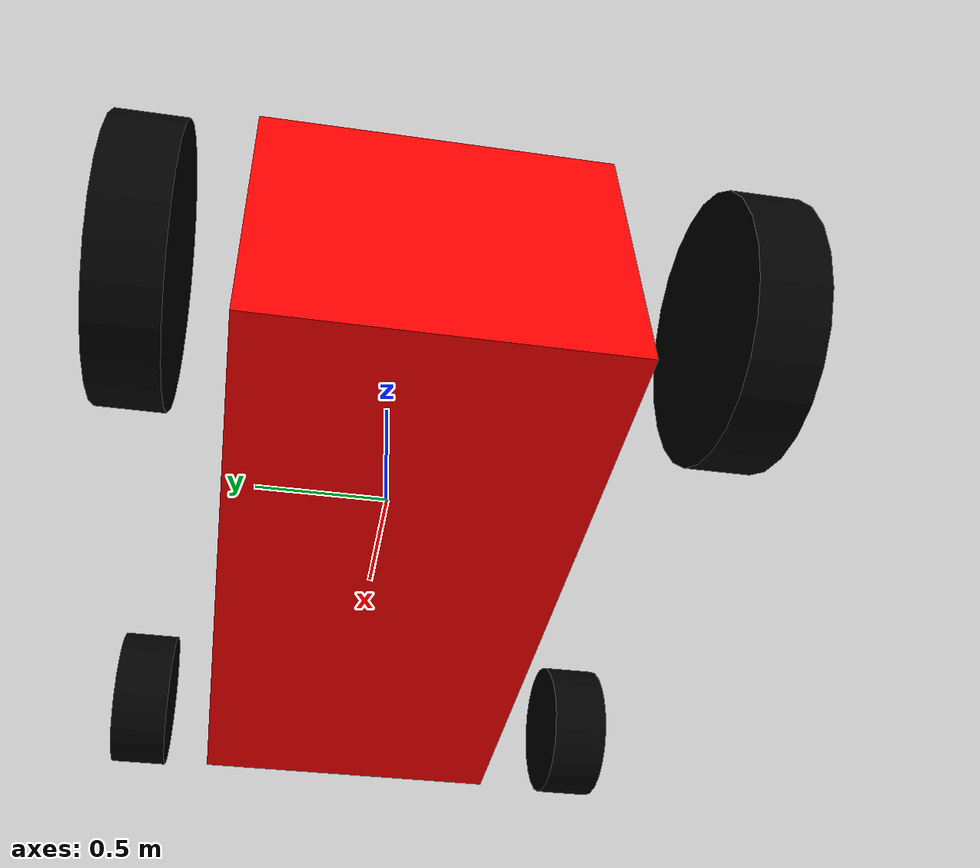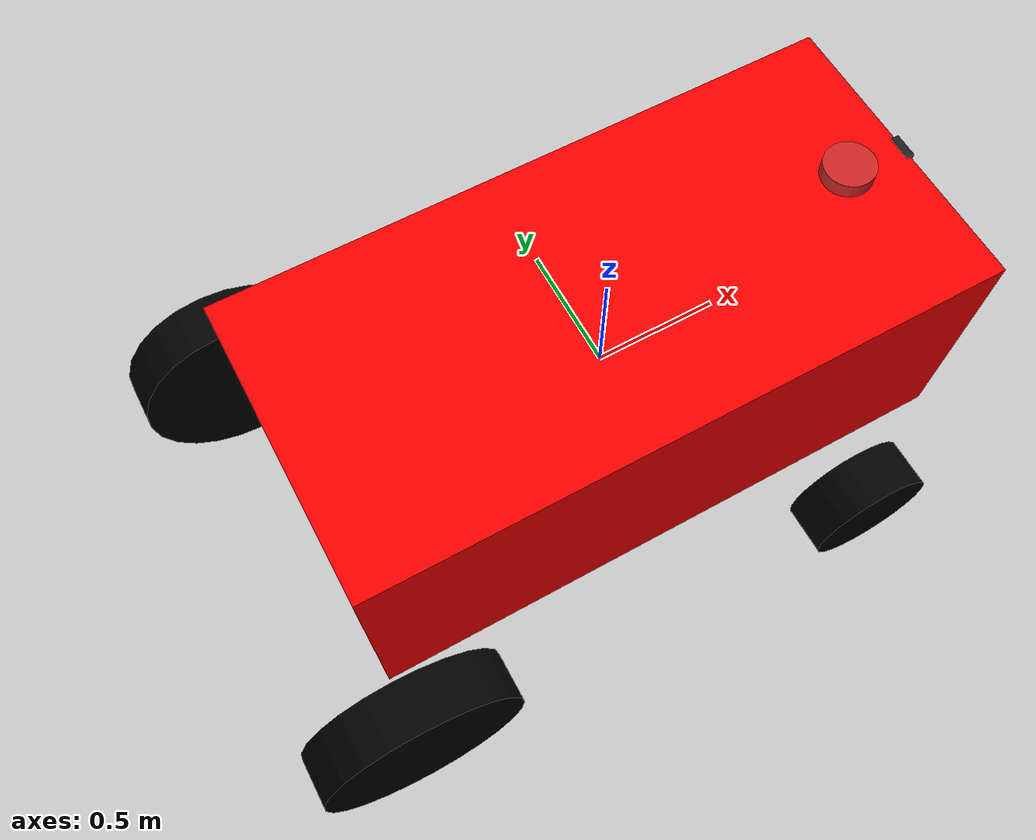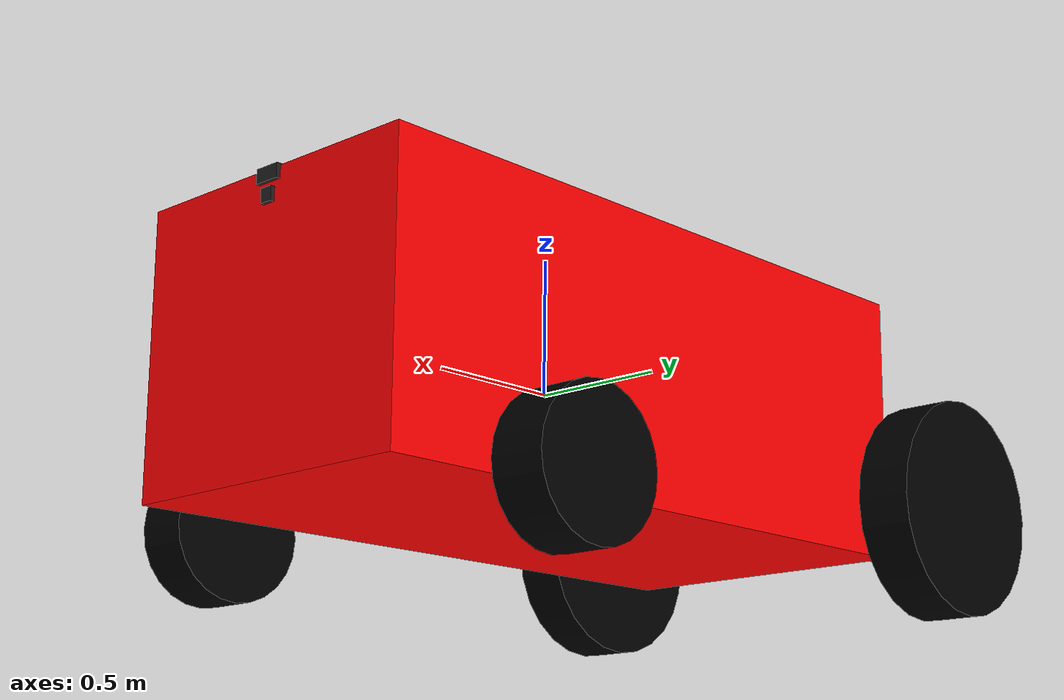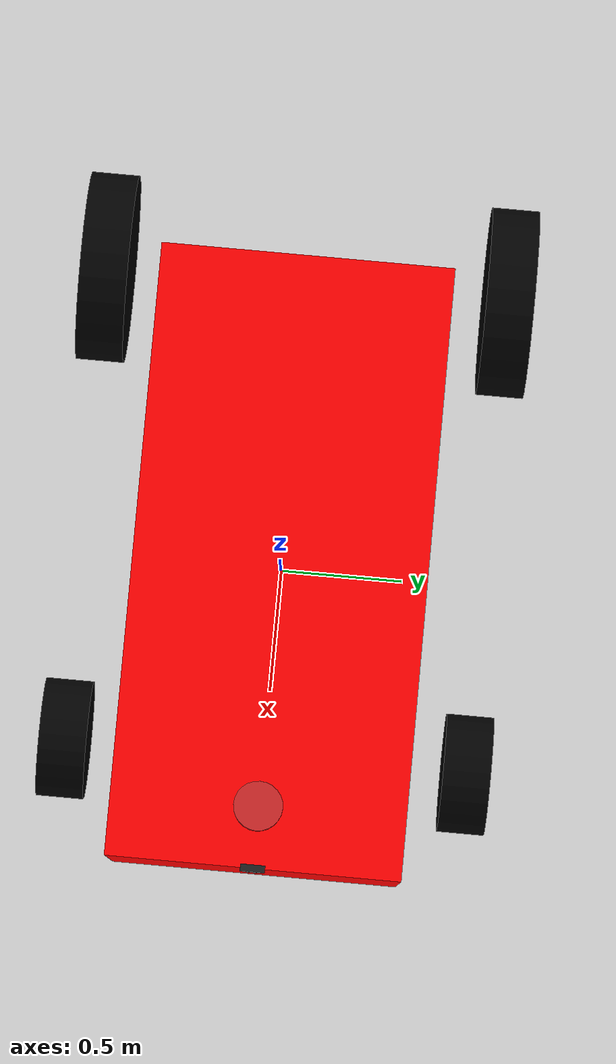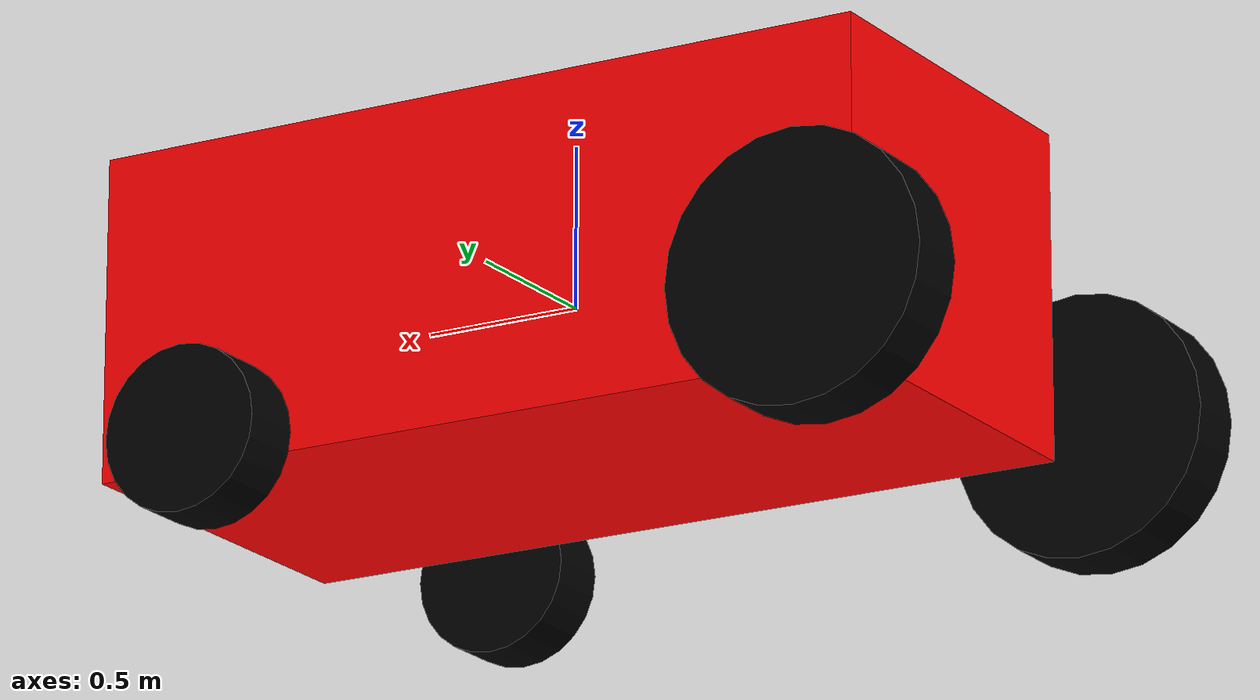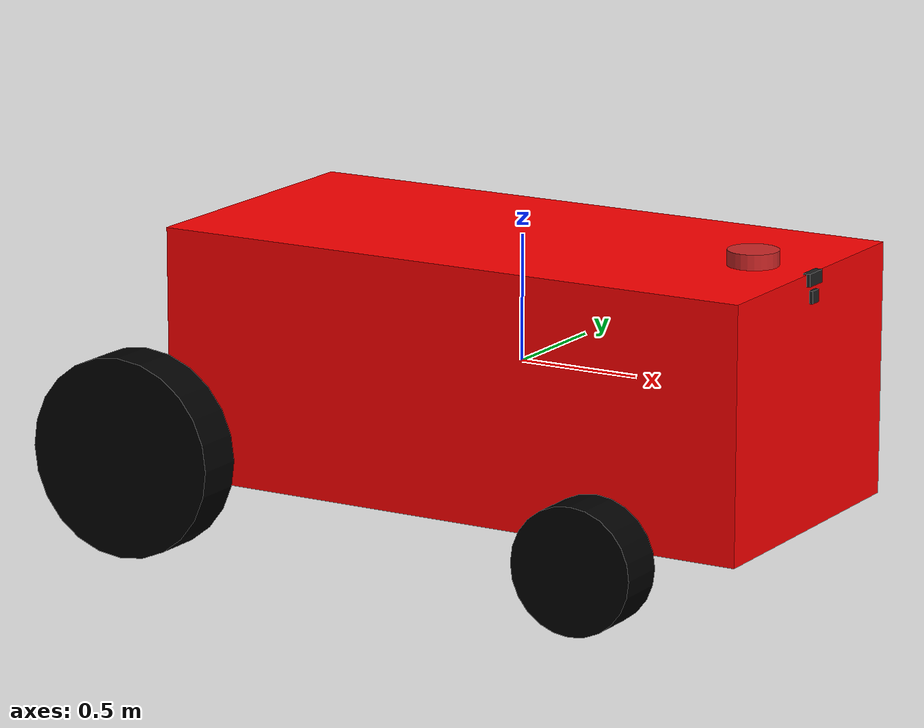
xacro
<?xml version="1.0"?>

<robot xmlns:xacro="http://www.ros.org/wiki/xacro" name="traktor">

    <xacro:include filename="ros2_control.xacro"/>

<link name="base_link">
  <inertial>
    <origin xyz="0.0 0.0 0.0" rpy="0.0 0.0 0.0"/>
    <mass value="10"/>
    <inertia ixx="24.166666666666668" ixy="0" ixz="0" iyy="28.333333333333336" iyz="0" izz="10.833333333333334"/>
  </inertial>
  <visual name="chassis">
    <origin xyz="0.0 0.0 0.0" rpy="0.0 0.0 0.0"/>
    <geometry>
      <box size="2.5 1.2 1"/>
    </geometry>
    <material name="">
      <color rgba="1.0 0.0 0.0 1.0"/>
      <texture filename=""/>
    </material>
  </visual>
  <collision>
    <origin xyz="0.0 0.0 0.0" rpy="0.0 0.0 0.0"/>
    <geometry>
      <box size="2.5 1.2 1"/>
    </geometry>
  </collision>
</link>

<!-- Right wheel steer  -->

<link name="right_wheel_steer">
  <visual>
    <geometry>
      <cylinder length="0.05" radius="0.02"/>
    </geometry>
    <material name="black"/>
  </visual>
  <collision>
    <geometry>
      <cylinder length="0.05" radius="0.02"/>
    </geometry>
  </collision>
  <inertial>
    <origin xyz="0.0 0.0 0.0" rpy="0.0 0.0 0.0"/>
    <mass value="1"/>
    <inertia ixx="0.07583333333333334" ixy="0" ixz="0" iyy="0.07583333333333334" iyz="0" izz="0.125"/>
  </inertial>
</link>

<joint name="right_wheel_steer_joint" type="revolute">
  <parent link="base_link"/>
  <child link="right_wheel_steer"/>
  <origin xyz="0.75 -0.85 -0.5" rpy="1.5707 0 0"/>
  <axis xyz="0 1 0"/>
  <limit effort="100" velocity="1" lower="-1" upper="1"/>
  <dynamics damping="0.0" friction="0.0"/>
</joint>

<!-- Front right wheel -->

<link name="front_right_wheel">
  <inertial>
    <origin xyz="0.0 0.0 0.0" rpy="0.0 0.0 0.0"/>
    <mass value="1"/>
    <inertia ixx="0.07583333333333334" ixy="0" ixz="0" iyy="0.07583333333333334" iyz="0" izz="0.125"/>
  </inertial>
  <visual name="">
    <origin xyz="0.0 0.0 0.0" rpy="0.0 0.0 0.0"/>
    <geometry>
      <cylinder length="0.20" radius="0.25"/>
    </geometry>
    <material name="">
      <color rgba="0.0 0.0 0.0 1.0"/>
      <texture filename=""/>
    </material>
  </visual>
  <collision>
    <origin xyz="0.0 0.0 0.0" rpy="0.0 0.0 0.0"/>
    <geometry>
      <cylinder length="0.20" radius="0.25"/>
    </geometry>
  </collision>
</link>

<joint name="front_right_wheel_joint" type="continuous">
  <parent link="right_wheel_steer"/>
  <child link="front_right_wheel"/>
  <origin xyz="0.0 0.0 0.0" rpy="0 0 0"/>
  <axis xyz="0 0 -1"/>
  <limit effort="100" velocity="100"/>
  <dynamics damping="0.0" friction="0.0"/>
</joint>

<!-- Rear right wheel -->

<link name="rear_right_wheel">
  <inertial>
    <origin xyz="0.0 0.0 0.0" rpy="0.0 0.0 0.0"/>
    <mass value="1"/>
    <inertia ixx="0.07583333333333334" ixy="0" ixz="0" iyy="0.07583333333333334" iyz="0" izz="0.125"/>
  </inertial>
  <visual name="">
    <origin xyz="0.0 0.0 0.0" rpy="0.0 0.0 0.0"/>
    <geometry>
      <cylinder length="0.20" radius="0.4"/>
    </geometry>
    <material name="">
      <color rgba="0.0 0.0 0.0 1.0"/>
      <texture filename=""/>
    </material>
  </visual>
  <collision>
    <origin xyz="0.0 0.0 0.0" rpy="0.0 0.0 0.0"/>
    <geometry>
      <cylinder length="0.20" radius="0.4"/>
    </geometry>
  </collision>
</link>

<joint name="rear_right_wheel_joint" type="continuous">
  <parent link="base_link"/>
  <child link="rear_right_wheel"/>
    <origin xyz="-1.25 -0.85 -0.35" rpy="1.5707 0 0"/>
  <axis xyz="0 0 -1"/>
  <limit effort="100" velocity="100"/>
  <dynamics damping="0.0" friction="0.0"/>
</joint>

<!-- Left_wheel_steer -->

<link name="left_wheel_steer">
  <inertial>
    <origin xyz="0.0 0.0 0.0" rpy="0.0 0.0 0.0"/>
    <mass value="1"/>
    <inertia ixx="0.07583333333333334" ixy="0" ixz="0" iyy="0.07583333333333334" iyz="0" izz="0.125"/>
  </inertial>
  <visual>
    <geometry>
      <cylinder length="0.05" radius="0.02"/>
    </geometry>
    <collision>
      <geometry>
        <cylinder length="0.05" radius="0.02"/>
      </geometry>
    </collision>
    <material name="black"/>
  </visual>
</link>

<joint name="left_wheel_steer_joint" type="revolute">
  <parent link="base_link"/>
  <child link="left_wheel_steer"/>
  <origin xyz="0.75 0.85 -0.5" rpy="1.5707 0 0"/>
  <axis xyz="0 1 0"/>
  <limit effort="100" velocity="1" lower="-1" upper="1"/>
  <dynamics damping="0.0" friction="0.0"/>
</joint>

<!-- Front left wheel -->

<link name="front_left_wheel">
  <inertial>
    <origin xyz="0.0 0.0 0.0" rpy="0.0 0.0 0.0"/>
    <mass value="1"/>
    <inertia ixx="0.07583333333333334" ixy="0" ixz="0" iyy="0.07583333333333334" iyz="0" izz="0.125"/>
  </inertial>
  <visual name="">
    <origin xyz="0.0 0.0 0.0" rpy="0.0 0.0 0.0"/>
    <geometry>
      <cylinder length="0.20" radius="0.25"/>
    </geometry>
    <material name="">
      <color rgba="0.0 0.0 0.0 1.0"/>
      <texture filename=""/>
    </material>
  </visual>
  <collision>
    <origin xyz="0.0 0.0 0.0" rpy="0.0 0.0 0.0"/>
    <geometry>
      <cylinder length="0.20" radius="0.25"/>
    </geometry>
  </collision>
</link>

<joint name="front_left_wheel_joint" type="continuous">
  <parent link="left_wheel_steer"/>
  <child link="front_left_wheel"/>
  <origin xyz="0.0 0.0 0.0" rpy="0 0 0"/>
  <axis xyz="0 0 -1"/>
  <limit effort="100" velocity="100"/>
  <dynamics damping="0.0" friction="0.0"/>
</joint>

<!-- Rear left wheel -->

<link name="rear_left_wheel">
  <inertial>
    <origin xyz="0.0 0.0 0.0" rpy="0.0 0.0 0.0"/>
    <mass value="1"/>
    <inertia ixx="0.07583333333333334" ixy="0" ixz="0" iyy="0.07583333333333334" iyz="0" izz="0.125"/>
  </inertial>
  <visual name="">
    <origin xyz="0.0 0.0 0.0" rpy="0.0 0.0 0.0"/>
    <geometry>
      <cylinder length="0.20" radius="0.4"/>
    </geometry>
    <material name="">
      <color rgba="0.0 0.0 0.0 1.0"/>
      <texture filename=""/>
    </material>
  </visual>
  <collision>
    <origin xyz="0.0 0.0 0.0" rpy="0.0 0.0 0.0"/>
    <geometry>
      <cylinder length="0.20" radius="0.4"/>
    </geometry>
  </collision>
</link>

<joint name="rear_left_wheel_joint" type="continuous">
  <parent link="base_link"/>
  <child link="rear_left_wheel"/>
    <origin xyz="-1.25 0.85 -0.35" rpy="1.5707 0 0"/>
  <axis xyz="0 0 -1"/>
  <limit effort="100" velocity="100"/>
  <dynamics damping="0.0" friction="0.0"/>
</joint>

<!-- GPS LINK -->

<link name="gps_link">
  <inertial>
    <origin xyz="0.0 0.0 0.0" rpy="0.0 0.0 0.0"/>
    <mass value="0.1"/>
    <inertia ixx="0.001" ixy="0" ixz="0" iyy="0.001" iyz="0" izz="0.001"/>
  </inertial>
  <visual name="">
    <origin xyz="0.0 0.0 0.0" rpy="0.0 0.0 0.0"/>
    <geometry>
      <box size="0.1 0.1 0.1"/>
    </geometry>
    <material name="">
      <color rgba="0.0 0.0 0.0 1.0"/>
      <texture filename=""/>
    </material>
  </visual>
  <collision>
    <origin xyz="0.0 0.0 0.0" rpy="0.0 0.0 0.0"/>
    <geometry>
      <box size="0.1 0.1 0.1"/>
    </geometry>
  </collision>
</link>

<!-- GPS JOINT -->
<joint name="gps_joint" type="fixed">
  <parent link="base_link"/>
  <child link="gps_link"/>
  <origin xyz="0.0 0.0 0" rpy="0.0 0.0 0.0"/>
</joint>

<!-- GPS PLUGIN -->
  <gazebo reference="gps_link">
    <sensor name="gps_sensor" type="gps">
      <always_on>true</always_on>
      <update_rate>1.0</update_rate>
      <plugin name="gps_controller" filename="libgazebo_ros_gps_sensor.so">
        <ros>
          <remapping>gps_controller/out:=/gps/fix</remapping>
        </ros>
        <frame_name>gps_link</frame_name>
        <offset>0 0 0</offset>
        <drift>0.001 0.001 0.001</drift>
        <gaussianNoise>0.05 0.05 0.05</gaussianNoise>
        <velocityDrift>0.001 0.001 0.001</velocityDrift>
        <velocityGaussianNoise>0.5 0.5 0.5</velocityGaussianNoise>
      </plugin>
    </sensor>
    <material>Gazebo/Turquoise</material>
  </gazebo>

<!-- İMU SENSÖR LİNK,JOİNT -->

<link name="imu_link">
  <inertial>
    <origin xyz="0.0 0.0 0.0" rpy="0.0 0.0 0.0"/>
    <mass value="0.01"/>
    <inertia ixx="0.0001" ixy="0.0" ixz="0.0" iyy="0.0001" iyz="0.0" izz="0.0001"/>
  </inertial>
  <visual name="">
    <origin xyz="0.0 0.0 0.0" rpy="0.0 0.0 0.0"/>
    <geometry>
      <box size="0.1 0.1 0.02"/>
    </geometry>
    <material name="">
      <color rgba="1.0 0.0 0.0 1.0"/>
      <texture filename=""/>
    </material>
  </visual>
  <collision>
    <origin xyz="0.0 0.0 0.0" rpy="0.0 0.0 0.0"/>
    <geometry>
      <box size="0.1 0.1 0.02"/>
    </geometry>
  </collision>
</link>

<joint name="imu_joint" type="fixed">
  <parent link="base_link"/>
  <child link="imu_link"/>
  <origin xyz="1.0 0.0 0" rpy="0.0 0.0 0.0"/>
</joint>

<!-- İMU SENSÖR PLUGİN -->
  <gazebo reference="imu_link">
    <sensor name="imu_sensor" type="imu">
      <plugin filename="libgazebo_ros_imu_sensor.so" name="imu_plugin">
        <ros>
          <remapping>~/out:=/imu</remapping>
        </ros>
        <initial_orientation_as_reference>false</initial_orientation_as_reference>
      </plugin>
      <always_on>true</always_on>
      <update_rate>100</update_rate>
      <visualize>true</visualize>
      <imu>
        <angular_velocity>
          <x>
            <noise type="gaussian">
              <mean>0.0</mean>
              <stddev>2e-4</stddev>
              <bias_mean>0.0000075</bias_mean>
              <bias_stddev>0.0000008</bias_stddev>
            </noise>
          </x>
          <y>
            <noise type="gaussian">
              <mean>0.0</mean>
              <stddev>2e-4</stddev>
              <bias_mean>0.0000075</bias_mean>
              <bias_stddev>0.0000008</bias_stddev>
            </noise>
          </y>
          <z>
            <noise type="gaussian">
              <mean>0.0</mean>
              <stddev>2e-4</stddev>
              <bias_mean>0.0000075</bias_mean>
              <bias_stddev>0.0000008</bias_stddev>
            </noise>
          </z>
        </angular_velocity>
        <linear_acceleration>
          <x>
            <noise type="gaussian">
              <mean>0.0</mean>
              <stddev>1.7e-2</stddev>
              <bias_mean>0.1</bias_mean>
              <bias_stddev>0.001</bias_stddev>
            </noise>
          </x>
          <y>
            <noise type="gaussian">
              <mean>0.0</mean>
              <stddev>1.7e-2</stddev>
              <bias_mean>0.1</bias_mean>
              <bias_stddev>0.001</bias_stddev>
            </noise>
          </y>
          <z>
            <noise type="gaussian">
              <mean>0.0</mean>
              <stddev>1.7e-2</stddev>
              <bias_mean>0.1</bias_mean>
              <bias_stddev>0.001</bias_stddev>
            </noise>
          </z>
        </linear_acceleration>
      </imu>
    </sensor>
    <material>Gazebo/Turquoise</material>
  </gazebo>

<!-- LİDAR LİNK -->

  <link name="lidar_link">
    <collision>
      <origin xyz="0 0 0" rpy="0 0 0"/>
      <geometry>
        <cylinder radius="0.1" length="0.1"/>
      </geometry>
    </collision>

    <visual>
      <origin xyz="0 0 0" rpy="0 0 0"/>
      <geometry>
        <cylinder radius="0.1" length="0.1"/>
      </geometry>
    </visual>

    <inertial>
      <mass value="1e-5" />
      <origin xyz="0 0 0" rpy="0 0 0"/>
      <inertia ixx="1e-6" ixy="0" ixz="0" iyy="1e-6" iyz="0" izz="1e-6" />
    </inertial>
  </link>

  <joint name="lidar_joint" type="fixed">
    <axis xyz="0 1 0" />
    <origin xyz="1 0 0.51" rpy="0 0 0"/>
    <parent link="base_link"/>
    <child link="lidar_link"/>
  </joint>

<!-- LİDAR PLUGİN -->
<gazebo reference="lidar_link">
    <sensor name="lidar" type="ray">
      <pose>0.215 0 0.215 0 0 0</pose>
      <always_on>true</always_on>
      <visualize>true</visualize>
      <update_rate>10</update_rate>
      <ray>
        <scan>
          <horizontal>
            <samples>360</samples>
            <resolution>1.00000</resolution>
            <min_angle>-3.14</min_angle>
            <max_angle>3.14</max_angle>
          </horizontal>
        </scan>
        <range>
          <min>0.120000</min>
          <max>15</max>
          <resolution>0.015000</resolution>
        </range>
        <noise>
          <type>gaussian</type>
          <mean>0.0</mean>
          <stddev>0.01</stddev>
        </noise>
      </ray>
      <plugin name="scan" filename="libgazebo_ros_ray_sensor.so">
        <ros>
          <remapping>~/out:=scan</remapping>
        </ros>
        <output_type>sensor_msgs/LaserScan</output_type>
        <frame_name>lidar_link</frame_name>
      </plugin>
    </sensor>
    <material>Gazebo/Red</material>
  </gazebo>

  <!-- Camera link -->

    <joint name="cam_joint" type="fixed">
        <parent link="base_link"/>
        <child link="cam_link"/>
        <origin xyz="1.25 0 0.41" rpy="0 0 0"/>
    </joint>

    <link name="cam_link">
        <visual>
            <geometry>
                <box size="0.030 0.05 0.05"/>
            </geometry>
            <material name="black"/>
        </visual>
    </link>

    <joint name="cam_optical_joint" type="fixed">
        <parent link="cam_link"/>
        <child link="cam_link_optical"/>
        <origin xyz="0 0 0" rpy="${-pi/2} 0 ${-pi/2}"/>
    </joint>

    <link name="cam_link_optical"> </link>

    <gazebo reference="cam_link">
        <material>Gazebo/Turquoise</material>
        <sensor name="camera" type="camera">
            <pose> 0 0 0 0 0 0 </pose>
            <visualize>true</visualize>
            <update_rate>10</update_rate>
            <camera>
                <horizontal_fov>1.089</horizontal_fov>
                <image>
                    <format>R8G8B8</format>
                    <width>640</width>
                    <height>480</height>
                </image>
                <clip>
                    <near>0.05</near>
                    <far>8.0</far>
                </clip>
            </camera>
            <plugin name="camera_controller" filename="libgazebo_ros_camera.so">
                <frame_name>cam_link_optical</frame_name>
            </plugin>
        </sensor>
    </gazebo>

  <!--Depth camera link -->

    <joint name="depth_cam_joint" type="fixed">
        <parent link="base_link"/>
        <child link="depth_cam_link"/>
        <origin xyz="1.25 0 0.48" rpy="0 0 0"/>
    </joint>

    <link name="depth_cam_link">
        <visual>
            <geometry>
                <box size="0.030 0.1 0.05"/>
            </geometry>
            <material name="black"/>
        </visual>
    </link>

    <joint name="depth_cam_optical_joint" type="fixed">
        <parent link="depth_cam_link"/>
        <child link="depth_cam_link_optical"/>
        <origin xyz="0 0 0" rpy="${-pi/2} 0 ${-pi/2}"/>
    </joint>

    <link name="depth_cam_link_optical"> </link>

    <gazebo reference="depth_cam_link">
        <material>Gazebo/Turquoise</material>
        <sensor name="depth_camera" type="depth">
            <pose> 0 0 0 0 0 0 </pose>
            <visualize>true</visualize>
            <update_rate>10</update_rate>
            <camera>
                <horizontal_fov>1.089</horizontal_fov>
                <image>
                    <format>B8R8G8</format>
                    <width>640</width>
                    <height>480</height>
                </image>
                <clip>
                    <near>0.05</near>
                    <far>8.0</far>
                </clip>
            </camera>
            <plugin name="depth_camera_controller" filename="libgazebo_ros_camera.so">
                <frame_name>depth_cam_link_optical</frame_name>
                <min_depth>0.1</min_depth>
                <max_depth>100</max_depth>
            </plugin>
        </sensor>
    </gazebo>

<!-- ACKERMANN DRİVE PLUGİN  -->

<gazebo>
  <plugin name="gazebo_ros_ackermann_drive" filename="libgazebo_ros_ackermann_drive.so">

    <ros>
      <remapping>cmd_vel:=cmd_vel</remapping>
      <remapping>odom:=odom</remapping>
      <remapping>distance:=distance_demo</remapping>
    </ros>

    <update_rate>100.0</update_rate>

    <!-- wheels -->
    <front_left_joint>front_left_wheel_joint</front_left_joint>
    <front_right_joint>front_right_wheel_joint</front_right_joint>
    <rear_left_joint>rear_left_wheel_joint</rear_left_joint>
    <rear_right_joint>rear_right_wheel_joint</rear_right_joint>
    <left_steering_joint>left_wheel_steer_joint</left_steering_joint>
    <right_steering_joint>right_wheel_steer_joint</right_steering_joint>

    <!-- Max absolute steer angle for tyre in radians-->
    <!-- Any cmd_vel angular z greater than this would be capped -->
    <max_steer>0.6458</max_steer>

    <!-- Max absolute steering angle of steering wheel -->
    <max_steering_angle>7.85</max_steering_angle>

    <!-- Max absolute linear speed in m/s -->
    <max_speed>20</max_speed>

    <!-- PID tuning -->
    <left_steering_pid_gain>1500 0 1</left_steering_pid_gain>
    <left_steering_i_range>0 0</left_steering_i_range>
    <right_steering_pid_gain>1500 0 1</right_steering_pid_gain>
    <right_steering_i_range>0 0</right_steering_i_range>
    <linear_velocity_pid_gain>1000 0 1</linear_velocity_pid_gain>
    <linear_velocity_i_range>0 0</linear_velocity_i_range>

    <!-- output -->
    <publish_odom>true</publish_odom>
    <publish_odom_tf>true</publish_odom_tf>
    <publish_wheel_tf>true</publish_wheel_tf>
    <publish_distance>true</publish_distance>

    <odometry_frame>odom</odometry_frame>
    <robot_base_frame>base_link</robot_base_frame>

  </plugin>
</gazebo>

<!-- LİNK COLORS  -->

<gazebo reference="base_link">
  <material>Gazebo/Red</material>
</gazebo>
<gazebo reference="right_wheel_steer">
  <material>Gazebo/Green</material>
</gazebo>
<gazebo reference="left_wheel_steer">
  <material>Gazebo/Green</material>
</gazebo>
<gazebo reference="front_right_wheel">
  <material>Gazebo/Black</material>
</gazebo>
<gazebo reference="front_left_wheel">
  <material>Gazebo/Black</material>
</gazebo>
<gazebo reference="rear_left_wheel">
  <material>Gazebo/Black</material>
</gazebo>
<gazebo reference="rear_right_wheel">
  <material>Gazebo/Black</material>
</gazebo>

</robot>
